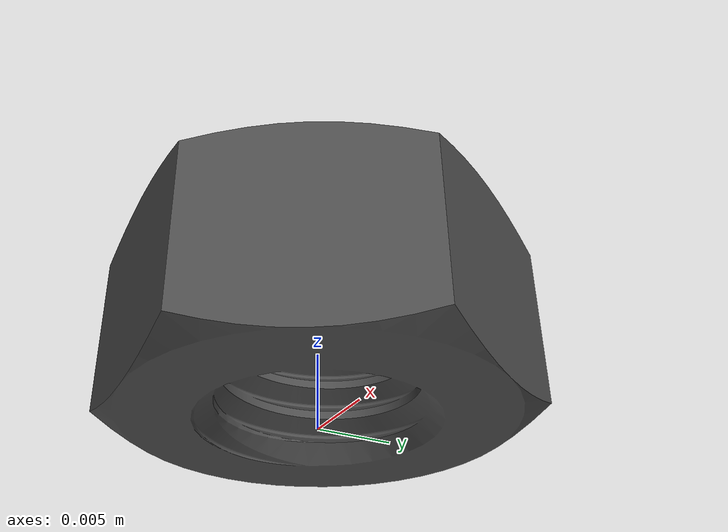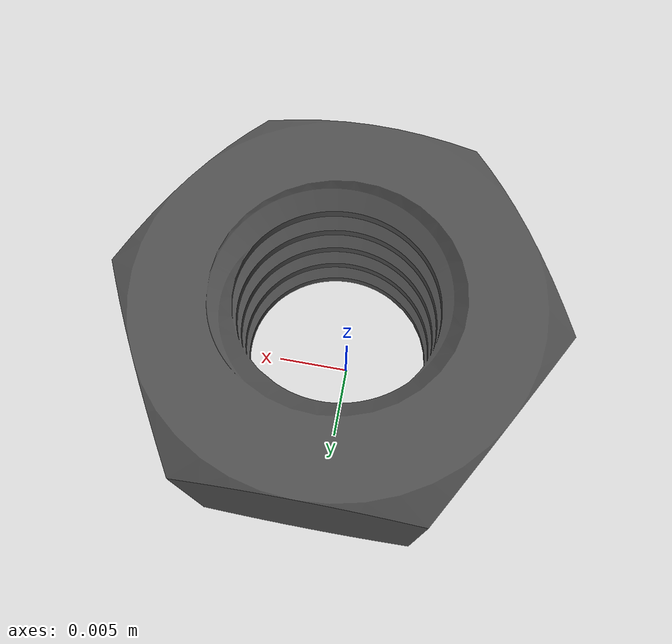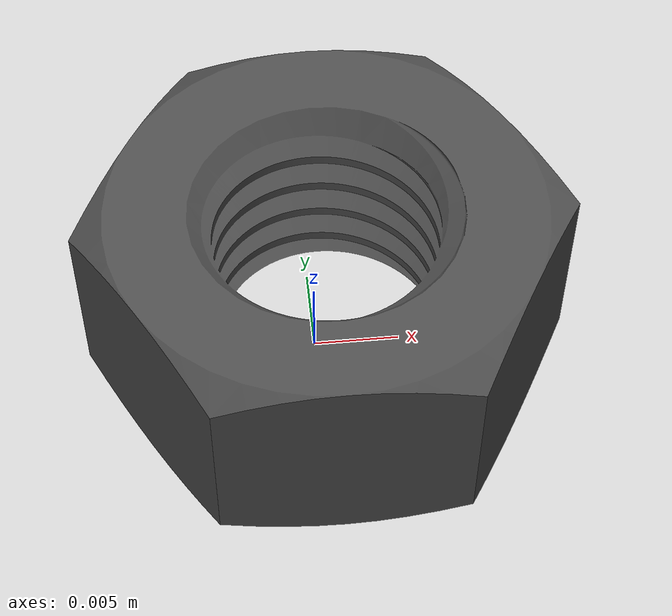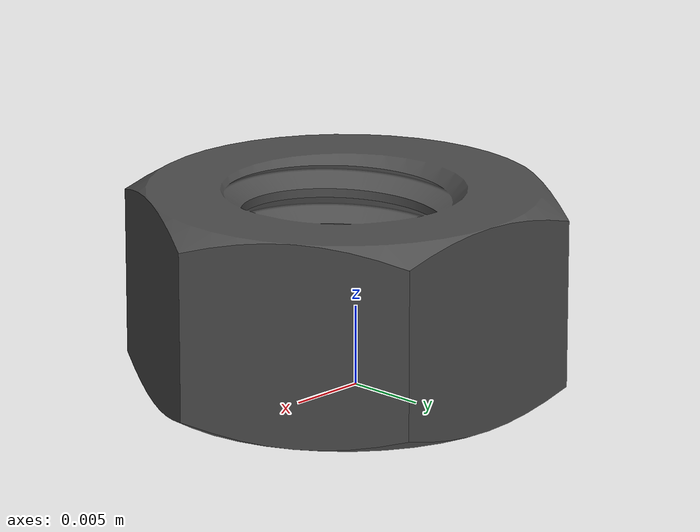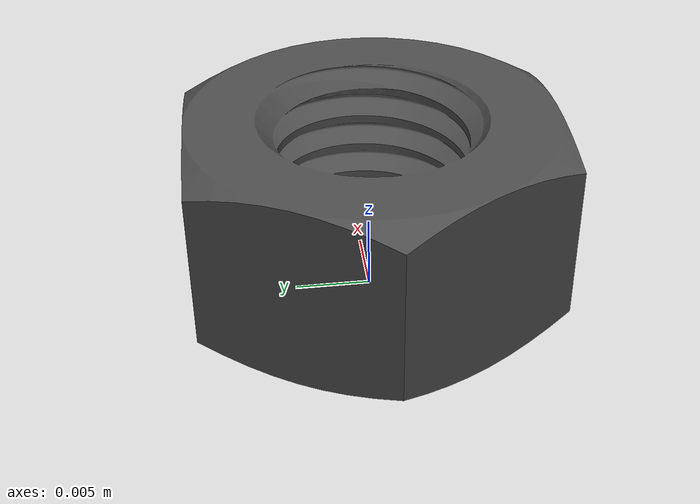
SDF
<?xml version='1.0'?>
<sdf version='1.6'>
  <model name='nut'>
    <link name='link_2'>
      <pose frame=''>0 0 0 0 -0 0</pose>
      <inertial>
        <mass>0.05</mass>
        <inertia>
          <ixx>0.166667</ixx>
          <ixy>0</ixy>
          <ixz>0</ixz>
          <iyy>0.166667</iyy>
          <iyz>0</iyz>
          <izz>0.166667</izz>
        </inertia>
        <pose frame=''>0 0 0 0 -0 0</pose>
      </inertial>
      <self_collide>0</self_collide>
      <kinematic>0</kinematic>
      <gravity>1</gravity>
      <visual name='visual'>
        <pose frame=''>0 0 0 0 -0 0</pose>
        <geometry>
          <mesh>
            <uri>model://nut/meshes/nut.dae</uri>
            <scale>0.0015 0.0015 0.0015</scale>
          </mesh>
        </geometry>
        <material>
          <lighting>1</lighting>
          <script>
            <uri>/home/zxc/model_editor_models/nut/meshes/nut.dae</uri>
            <name>Gazebo/DarkGrey</name>
          </script>
          <shader type='vertex'>
            <normal_map>__default__</normal_map>
          </shader>
          <ambient>0.175 0.175 0.175 1</ambient>
          <diffuse>0.175 0.175 0.175 1</diffuse>
          <specular>0.175 0.175 0.175 1</specular>
          <emissive>0 0 0 1</emissive>
        </material>
        <cast_shadows>1</cast_shadows>
        <transparency>0</transparency>
      </visual>
      <collision name='collision'>
        <laser_retro>0</laser_retro>
        <max_contacts>10</max_contacts>
        <pose frame=''>0 0 0 0 -0 0</pose>
        <geometry>
          <mesh>
            <uri>/home/zxc/model_editor_models/nut/meshes/nut.dae</uri>
            <scale>0.0015 0.0015 0.0015</scale>
          </mesh>
        </geometry>
        <surface>
          <friction>
            <ode>
              <mu>1</mu>
              <mu2>1</mu2>
              <fdir1>0 0 0</fdir1>
              <slip1>0</slip1>
              <slip2>0</slip2>
            </ode>
            <torsional>
              <coefficient>1</coefficient>
              <patch_radius>0</patch_radius>
              <surface_radius>0</surface_radius>
              <use_patch_radius>1</use_patch_radius>
              <ode>
                <slip>0</slip>
              </ode>
            </torsional>
          </friction>
          <bounce>
            <restitution_coefficient>0</restitution_coefficient>
            <threshold>1e+06</threshold>
          </bounce>
          <contact>
            <collide_without_contact>0</collide_without_contact>
            <collide_without_contact_bitmask>1</collide_without_contact_bitmask>
            <collide_bitmask>1</collide_bitmask>
            <ode>
              <soft_cfm>0</soft_cfm>
              <soft_erp>0.2</soft_erp>
              <kp>1e+13</kp>
              <kd>1</kd>
              <max_vel>0.01</max_vel>
              <min_depth>0</min_depth>
            </ode>
            <bullet>
              <split_impulse>1</split_impulse>
              <split_impulse_penetration_threshold>-0.01</split_impulse_penetration_threshold>
              <soft_cfm>0</soft_cfm>
              <soft_erp>0.2</soft_erp>
              <kp>1e+13</kp>
              <kd>1</kd>
            </bullet>
          </contact>
        </surface>
      </collision>
    </link>
    <static>0</static>
    <allow_auto_disable>1</allow_auto_disable>
  </model>
</sdf>
